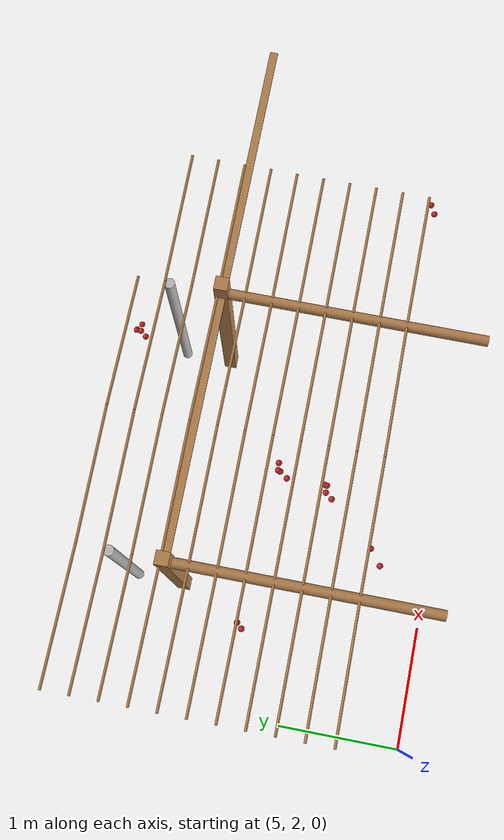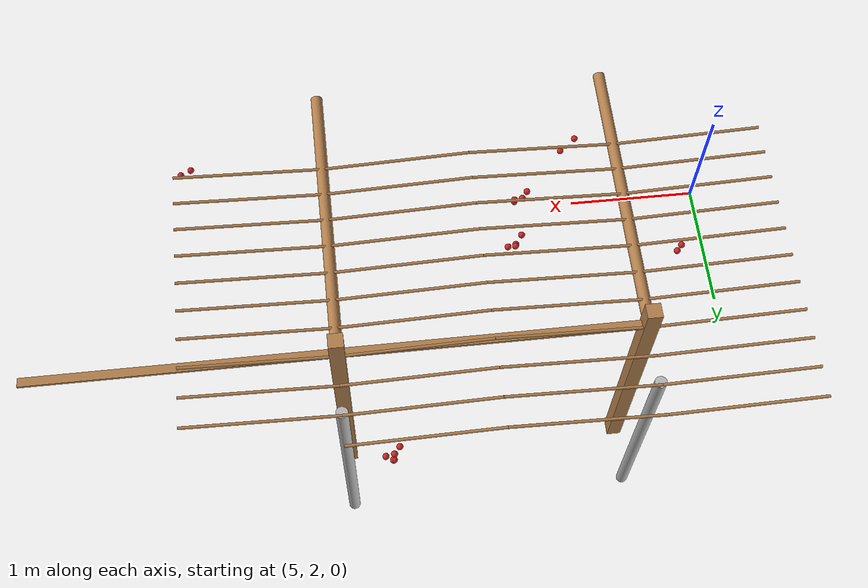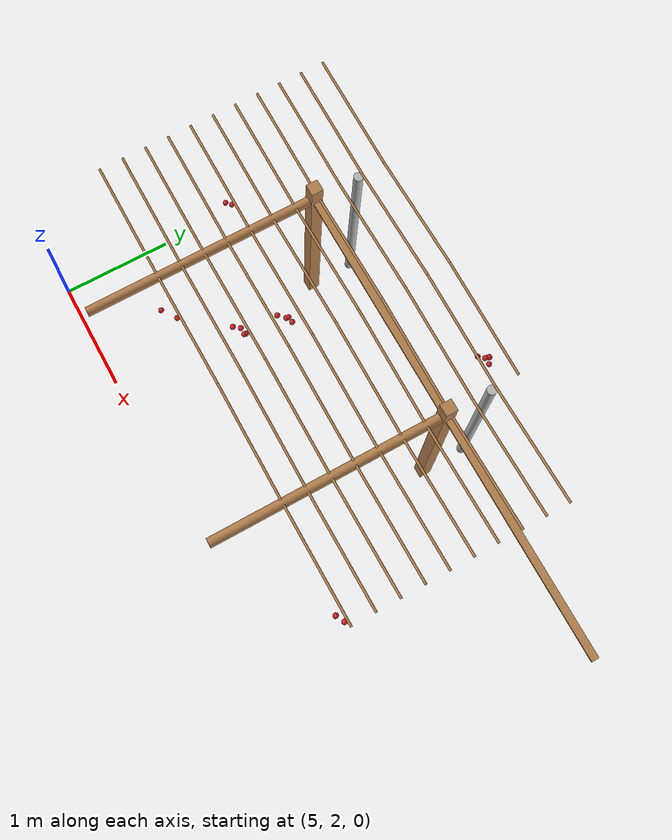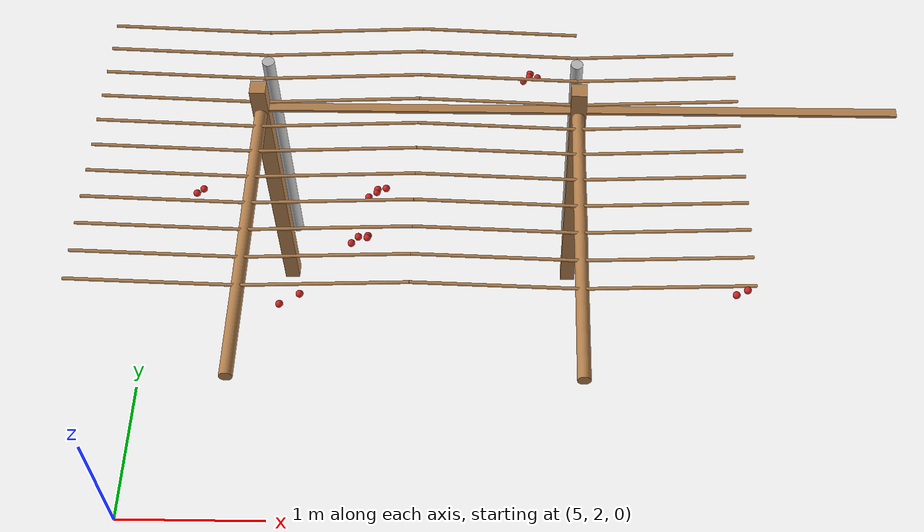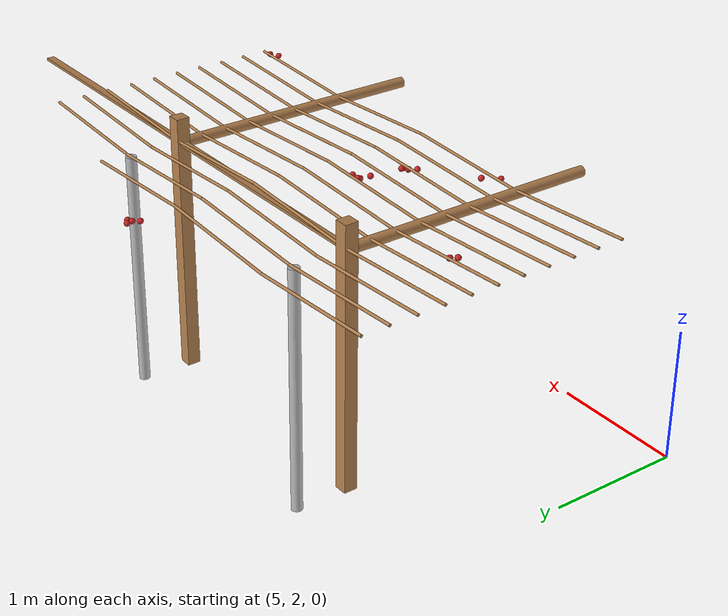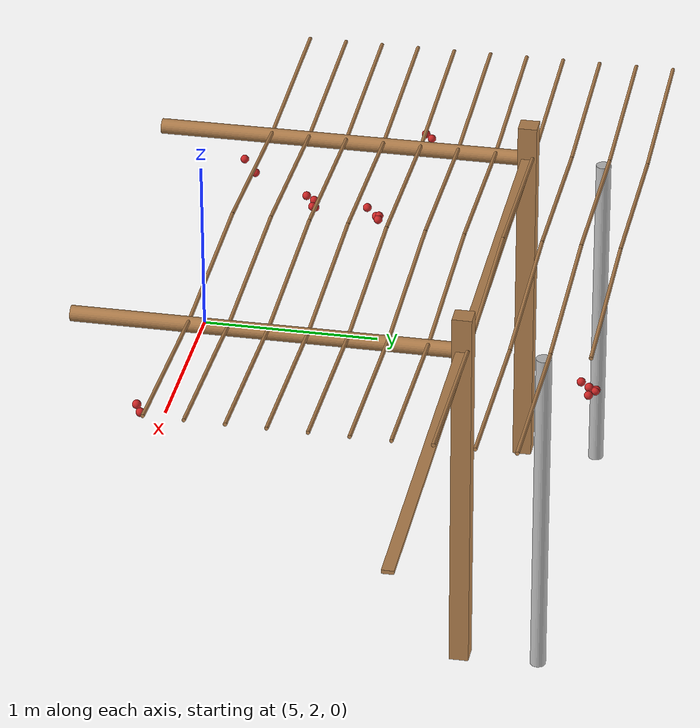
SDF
<sdf version="1.4">
 <model name="pergola">
  <include><name>post_35</name><pose>6.0 4.0 0 0 0 0</pose><uri>model://post</uri></include>
  <include><name>post_46</name><pose>8.0 4.0 0 0 0 0</pose><uri>model://post</uri></include>
  <link name="beam_35">
   <pose>7.0 4.0 1.81 0 0 0</pose>
   <collision name="collision"><geometry><box><size>2.0 0.06 0.02</size></box></geometry></collision>
   <visual name="visual">
    <geometry><box><size>2.0 0.06 0.02</size></box></geometry>
    <material><script><name>Gazebo/Wood</name></script></material>
   </visual>
   <inertial>
    <mass>5</mass>
    <inertia>
     <ixx>0.0016666666666666668</ixx>
     <ixy>0.0</ixy>
     <ixz>0.0</ixz>
     <iyy>1.6681666666666664</iyy>
     <iyz>0.0</iyz>
     <izz>1.6668333333333332</izz>
    </inertia>
   </inertial>
  </link>
  <link name="beam_46">
   <pose>9.0 4.0 1.81 0 0 0</pose>
   <collision name="collision"><geometry><box><size>2.0 0.06 0.02</size></box></geometry></collision>
   <visual name="visual">
    <geometry><box><size>2.0 0.06 0.02</size></box></geometry>
    <material><script><name>Gazebo/Wood</name></script></material>
   </visual>
   <inertial>
    <mass>5</mass>
    <inertia>
     <ixx>0.0016666666666666668</ixx>
     <ixy>0.0</ixy>
     <ixz>0.0</ixz>
     <iyy>1.6681666666666664</iyy>
     <iyz>0.0</iyz>
     <izz>1.6668333333333332</izz>
    </inertia>
   </inertial>
  </link>
  <include><name>tree_32</name><pose>6.0 4.4 0 0 0 0</pose><uri>model://tree_trunk</uri></include>
  <include><name>tree_42</name><pose>8.0 4.4 0 0 0 0</pose><uri>model://tree_trunk</uri></include>
  <link name="baseBranch_31">
   <pose>6.0 3.0 1.8 1.5707963267948966 0 0</pose>
   <collision name="collision">
    <geometry><cylinder><radius>0.04</radius><length>1.94</length></cylinder></geometry>
   </collision>
   <visual name="visual">
    <geometry><cylinder><radius>0.04</radius><length>1.94</length></cylinder></geometry>
    <material><script><name>Gazebo/WoodFloor</name></script></material>
   </visual>
   <inertial>
    <mass>10</mass>
    <inertia>
     <ixx>3.140333333333333</ixx>
     <ixy>0.0</ixy>
     <ixz>0.0</ixz>
     <iyy>3.140333333333333</iyy>
     <iyz>0.0</iyz>
     <izz>0.008</izz>
    </inertia>
   </inertial>
  </link>
  <link name="baseBranch_41">
   <pose>8.0 3.0 1.8 1.5707963267948966 0 0</pose>
   <collision name="collision">
    <geometry><cylinder><radius>0.04</radius><length>1.94</length></cylinder></geometry>
   </collision>
   <visual name="visual">
    <geometry><cylinder><radius>0.04</radius><length>1.94</length></cylinder></geometry>
    <material><script><name>Gazebo/WoodFloor</name></script></material>
   </visual>
   <inertial>
    <mass>10</mass>
    <inertia>
     <ixx>3.140333333333333</ixx>
     <ixy>0.0</ixy>
     <ixz>0.0</ixz>
     <iyy>3.140333333333333</iyy>
     <iyz>0.0</iyz>
     <izz>0.008</izz>
    </inertia>
   </inertial>
  </link>
  <link name="vine_427">
   <pose>5.5 2.63 1.85 0 -1.5208379310729538 0</pose>
   <collision name="collision">
    <geometry><cylinder><radius>0.01</radius><length>1.0012492197250393</length></cylinder></geometry>
   </collision>
   <visual name="visual">
    <geometry><cylinder><radius>0.01</radius><length>1.0012492197250393</length></cylinder></geometry>
    <material><script><name>Gazebo/WoodFloor</name></script></material>
   </visual>
   <inertial>
    <mass>5</mass>
    <inertia>
     <ixx>0.41783333333333345</ixx>
     <ixy>0.0</ixy>
     <ixz>0.0</ixz>
     <iyy>0.41783333333333345</iyy>
     <iyz>0.0</iyz>
     <izz>0.00025</izz>
    </inertia>
   </inertial>
  </link>
  <link name="vine_429">
   <pose>5.5 2.83 1.85 0 -1.5208379310729538 0</pose>
   <collision name="collision">
    <geometry><cylinder><radius>0.01</radius><length>1.0012492197250393</length></cylinder></geometry>
   </collision>
   <visual name="visual">
    <geometry><cylinder><radius>0.01</radius><length>1.0012492197250393</length></cylinder></geometry>
    <material><script><name>Gazebo/WoodFloor</name></script></material>
   </visual>
   <inertial>
    <mass>5</mass>
    <inertia>
     <ixx>0.41783333333333345</ixx>
     <ixy>0.0</ixy>
     <ixz>0.0</ixz>
     <iyy>0.41783333333333345</iyy>
     <iyz>0.0</iyz>
     <izz>0.00025</izz>
    </inertia>
   </inertial>
  </link>
  <link name="vine_431">
   <pose>5.5 3.03 1.85 0 -1.5208379310729538 0</pose>
   <collision name="collision">
    <geometry><cylinder><radius>0.01</radius><length>1.0012492197250393</length></cylinder></geometry>
   </collision>
   <visual name="visual">
    <geometry><cylinder><radius>0.01</radius><length>1.0012492197250393</length></cylinder></geometry>
    <material><script><name>Gazebo/WoodFloor</name></script></material>
   </visual>
   <inertial>
    <mass>5</mass>
    <inertia>
     <ixx>0.41783333333333345</ixx>
     <ixy>0.0</ixy>
     <ixz>0.0</ixz>
     <iyy>0.41783333333333345</iyy>
     <iyz>0.0</iyz>
     <izz>0.00025</izz>
    </inertia>
   </inertial>
  </link>
  <link name="vine_433">
   <pose>5.5 3.23 1.85 0 -1.5208379310729538 0</pose>
   <collision name="collision">
    <geometry><cylinder><radius>0.01</radius><length>1.0012492197250393</length></cylinder></geometry>
   </collision>
   <visual name="visual">
    <geometry><cylinder><radius>0.01</radius><length>1.0012492197250393</length></cylinder></geometry>
    <material><script><name>Gazebo/WoodFloor</name></script></material>
   </visual>
   <inertial>
    <mass>5</mass>
    <inertia>
     <ixx>0.41783333333333345</ixx>
     <ixy>0.0</ixy>
     <ixz>0.0</ixz>
     <iyy>0.41783333333333345</iyy>
     <iyz>0.0</iyz>
     <izz>0.00025</izz>
    </inertia>
   </inertial>
  </link>
  <link name="vine_435">
   <pose>5.5 3.43 1.85 0 -1.5208379310729538 0</pose>
   <collision name="collision">
    <geometry><cylinder><radius>0.01</radius><length>1.0012492197250393</length></cylinder></geometry>
   </collision>
   <visual name="visual">
    <geometry><cylinder><radius>0.01</radius><length>1.0012492197250393</length></cylinder></geometry>
    <material><script><name>Gazebo/WoodFloor</name></script></material>
   </visual>
   <inertial>
    <mass>5</mass>
    <inertia>
     <ixx>0.41783333333333345</ixx>
     <ixy>0.0</ixy>
     <ixz>0.0</ixz>
     <iyy>0.41783333333333345</iyy>
     <iyz>0.0</iyz>
     <izz>0.00025</izz>
    </inertia>
   </inertial>
  </link>
  <link name="vine_437">
   <pose>5.5 3.63 1.85 0 -1.5208379310729538 0</pose>
   <collision name="collision">
    <geometry><cylinder><radius>0.01</radius><length>1.0012492197250393</length></cylinder></geometry>
   </collision>
   <visual name="visual">
    <geometry><cylinder><radius>0.01</radius><length>1.0012492197250393</length></cylinder></geometry>
    <material><script><name>Gazebo/WoodFloor</name></script></material>
   </visual>
   <inertial>
    <mass>5</mass>
    <inertia>
     <ixx>0.41783333333333345</ixx>
     <ixy>0.0</ixy>
     <ixz>0.0</ixz>
     <iyy>0.41783333333333345</iyy>
     <iyz>0.0</iyz>
     <izz>0.00025</izz>
    </inertia>
   </inertial>
  </link>
  <link name="vine_439">
   <pose>5.5 3.83 1.85 0 -1.5208379310729538 0</pose>
   <collision name="collision">
    <geometry><cylinder><radius>0.01</radius><length>1.0012492197250393</length></cylinder></geometry>
   </collision>
   <visual name="visual">
    <geometry><cylinder><radius>0.01</radius><length>1.0012492197250393</length></cylinder></geometry>
    <material><script><name>Gazebo/WoodFloor</name></script></material>
   </visual>
   <inertial>
    <mass>5</mass>
    <inertia>
     <ixx>0.41783333333333345</ixx>
     <ixy>0.0</ixy>
     <ixz>0.0</ixz>
     <iyy>0.41783333333333345</iyy>
     <iyz>0.0</iyz>
     <izz>0.00025</izz>
    </inertia>
   </inertial>
  </link>
  <link name="vine_441">
   <pose>5.5 4.03 1.85 0 -1.5208379310729538 0</pose>
   <collision name="collision">
    <geometry><cylinder><radius>0.01</radius><length>1.0012492197250393</length></cylinder></geometry>
   </collision>
   <visual name="visual">
    <geometry><cylinder><radius>0.01</radius><length>1.0012492197250393</length></cylinder></geometry>
    <material><script><name>Gazebo/WoodFloor</name></script></material>
   </visual>
   <inertial>
    <mass>5</mass>
    <inertia>
     <ixx>0.41783333333333345</ixx>
     <ixy>0.0</ixy>
     <ixz>0.0</ixz>
     <iyy>0.41783333333333345</iyy>
     <iyz>0.0</iyz>
     <izz>0.00025</izz>
    </inertia>
   </inertial>
  </link>
  <link name="vine_443">
   <pose>5.5 4.23 1.85 0 -1.5208379310729538 0</pose>
   <collision name="collision">
    <geometry><cylinder><radius>0.01</radius><length>1.0012492197250393</length></cylinder></geometry>
   </collision>
   <visual name="visual">
    <geometry><cylinder><radius>0.01</radius><length>1.0012492197250393</length></cylinder></geometry>
    <material><script><name>Gazebo/WoodFloor</name></script></material>
   </visual>
   <inertial>
    <mass>5</mass>
    <inertia>
     <ixx>0.41783333333333345</ixx>
     <ixy>0.0</ixy>
     <ixz>0.0</ixz>
     <iyy>0.41783333333333345</iyy>
     <iyz>0.0</iyz>
     <izz>0.00025</izz>
    </inertia>
   </inertial>
  </link>
  <link name="vine_445">
   <pose>5.5 4.430000000000001 1.85 0 -1.5208379310729538 0</pose>
   <collision name="collision">
    <geometry><cylinder><radius>0.01</radius><length>1.0012492197250393</length></cylinder></geometry>
   </collision>
   <visual name="visual">
    <geometry><cylinder><radius>0.01</radius><length>1.0012492197250393</length></cylinder></geometry>
    <material><script><name>Gazebo/WoodFloor</name></script></material>
   </visual>
   <inertial>
    <mass>5</mass>
    <inertia>
     <ixx>0.41783333333333345</ixx>
     <ixy>0.0</ixy>
     <ixz>0.0</ixz>
     <iyy>0.41783333333333345</iyy>
     <iyz>0.0</iyz>
     <izz>0.00025</izz>
    </inertia>
   </inertial>
  </link>
  <link name="vine_447">
   <pose>5.5 4.630000000000001 1.85 0 -1.5208379310729538 0</pose>
   <collision name="collision">
    <geometry><cylinder><radius>0.01</radius><length>1.0012492197250393</length></cylinder></geometry>
   </collision>
   <visual name="visual">
    <geometry><cylinder><radius>0.01</radius><length>1.0012492197250393</length></cylinder></geometry>
    <material><script><name>Gazebo/WoodFloor</name></script></material>
   </visual>
   <inertial>
    <mass>5</mass>
    <inertia>
     <ixx>0.41783333333333345</ixx>
     <ixy>0.0</ixy>
     <ixz>0.0</ixz>
     <iyy>0.41783333333333345</iyy>
     <iyz>0.0</iyz>
     <izz>0.00025</izz>
    </inertia>
   </inertial>
  </link>
  <link name="vine_626">
   <pose>6.5 2.63 1.85 0 1.5208379310729538 0</pose>
   <collision name="collision">
    <geometry><cylinder><radius>0.01</radius><length>1.0012492197250393</length></cylinder></geometry>
   </collision>
   <visual name="visual">
    <geometry><cylinder><radius>0.01</radius><length>1.0012492197250393</length></cylinder></geometry>
    <material><script><name>Gazebo/WoodFloor</name></script></material>
   </visual>
   <inertial>
    <mass>5</mass>
    <inertia>
     <ixx>0.41783333333333345</ixx>
     <ixy>0.0</ixy>
     <ixz>0.0</ixz>
     <iyy>0.41783333333333345</iyy>
     <iyz>0.0</iyz>
     <izz>0.00025</izz>
    </inertia>
   </inertial>
  </link>
  <link name="vine_627">
   <pose>7.5 2.63 1.85 0 -1.5208379310729538 0</pose>
   <collision name="collision">
    <geometry><cylinder><radius>0.01</radius><length>1.0012492197250393</length></cylinder></geometry>
   </collision>
   <visual name="visual">
    <geometry><cylinder><radius>0.01</radius><length>1.0012492197250393</length></cylinder></geometry>
    <material><script><name>Gazebo/WoodFloor</name></script></material>
   </visual>
   <inertial>
    <mass>5</mass>
    <inertia>
     <ixx>0.41783333333333345</ixx>
     <ixy>0.0</ixy>
     <ixz>0.0</ixz>
     <iyy>0.41783333333333345</iyy>
     <iyz>0.0</iyz>
     <izz>0.00025</izz>
    </inertia>
   </inertial>
  </link>
  <link name="vine_628">
   <pose>6.5 2.83 1.85 0 1.5208379310729538 0</pose>
   <collision name="collision">
    <geometry><cylinder><radius>0.01</radius><length>1.0012492197250393</length></cylinder></geometry>
   </collision>
   <visual name="visual">
    <geometry><cylinder><radius>0.01</radius><length>1.0012492197250393</length></cylinder></geometry>
    <material><script><name>Gazebo/WoodFloor</name></script></material>
   </visual>
   <inertial>
    <mass>5</mass>
    <inertia>
     <ixx>0.41783333333333345</ixx>
     <ixy>0.0</ixy>
     <ixz>0.0</ixz>
     <iyy>0.41783333333333345</iyy>
     <iyz>0.0</iyz>
     <izz>0.00025</izz>
    </inertia>
   </inertial>
  </link>
  <link name="vine_629">
   <pose>7.5 2.83 1.85 0 -1.5208379310729538 0</pose>
   <collision name="collision">
    <geometry><cylinder><radius>0.01</radius><length>1.0012492197250393</length></cylinder></geometry>
   </collision>
   <visual name="visual">
    <geometry><cylinder><radius>0.01</radius><length>1.0012492197250393</length></cylinder></geometry>
    <material><script><name>Gazebo/WoodFloor</name></script></material>
   </visual>
   <inertial>
    <mass>5</mass>
    <inertia>
     <ixx>0.41783333333333345</ixx>
     <ixy>0.0</ixy>
     <ixz>0.0</ixz>
     <iyy>0.41783333333333345</iyy>
     <iyz>0.0</iyz>
     <izz>0.00025</izz>
    </inertia>
   </inertial>
  </link>
  <link name="vine_630">
   <pose>6.5 3.03 1.85 0 1.5208379310729538 0</pose>
   <collision name="collision">
    <geometry><cylinder><radius>0.01</radius><length>1.0012492197250393</length></cylinder></geometry>
   </collision>
   <visual name="visual">
    <geometry><cylinder><radius>0.01</radius><length>1.0012492197250393</length></cylinder></geometry>
    <material><script><name>Gazebo/WoodFloor</name></script></material>
   </visual>
   <inertial>
    <mass>5</mass>
    <inertia>
     <ixx>0.41783333333333345</ixx>
     <ixy>0.0</ixy>
     <ixz>0.0</ixz>
     <iyy>0.41783333333333345</iyy>
     <iyz>0.0</iyz>
     <izz>0.00025</izz>
    </inertia>
   </inertial>
  </link>
  <link name="vine_631">
   <pose>7.5 3.03 1.85 0 -1.5208379310729538 0</pose>
   <collision name="collision">
    <geometry><cylinder><radius>0.01</radius><length>1.0012492197250393</length></cylinder></geometry>
   </collision>
   <visual name="visual">
    <geometry><cylinder><radius>0.01</radius><length>1.0012492197250393</length></cylinder></geometry>
    <material><script><name>Gazebo/WoodFloor</name></script></material>
   </visual>
   <inertial>
    <mass>5</mass>
    <inertia>
     <ixx>0.41783333333333345</ixx>
     <ixy>0.0</ixy>
     <ixz>0.0</ixz>
     <iyy>0.41783333333333345</iyy>
     <iyz>0.0</iyz>
     <izz>0.00025</izz>
    </inertia>
   </inertial>
  </link>
  <link name="vine_632">
   <pose>6.5 3.23 1.85 0 1.5208379310729538 0</pose>
   <collision name="collision">
    <geometry><cylinder><radius>0.01</radius><length>1.0012492197250393</length></cylinder></geometry>
   </collision>
   <visual name="visual">
    <geometry><cylinder><radius>0.01</radius><length>1.0012492197250393</length></cylinder></geometry>
    <material><script><name>Gazebo/WoodFloor</name></script></material>
   </visual>
   <inertial>
    <mass>5</mass>
    <inertia>
     <ixx>0.41783333333333345</ixx>
     <ixy>0.0</ixy>
     <ixz>0.0</ixz>
     <iyy>0.41783333333333345</iyy>
     <iyz>0.0</iyz>
     <izz>0.00025</izz>
    </inertia>
   </inertial>
  </link>
  <link name="vine_633">
   <pose>7.5 3.23 1.85 0 -1.5208379310729538 0</pose>
   <collision name="collision">
    <geometry><cylinder><radius>0.01</radius><length>1.0012492197250393</length></cylinder></geometry>
   </collision>
   <visual name="visual">
    <geometry><cylinder><radius>0.01</radius><length>1.0012492197250393</length></cylinder></geometry>
    <material><script><name>Gazebo/WoodFloor</name></script></material>
   </visual>
   <inertial>
    <mass>5</mass>
    <inertia>
     <ixx>0.41783333333333345</ixx>
     <ixy>0.0</ixy>
     <ixz>0.0</ixz>
     <iyy>0.41783333333333345</iyy>
     <iyz>0.0</iyz>
     <izz>0.00025</izz>
    </inertia>
   </inertial>
  </link>
  <link name="vine_634">
   <pose>6.5 3.43 1.85 0 1.5208379310729538 0</pose>
   <collision name="collision">
    <geometry><cylinder><radius>0.01</radius><length>1.0012492197250393</length></cylinder></geometry>
   </collision>
   <visual name="visual">
    <geometry><cylinder><radius>0.01</radius><length>1.0012492197250393</length></cylinder></geometry>
    <material><script><name>Gazebo/WoodFloor</name></script></material>
   </visual>
   <inertial>
    <mass>5</mass>
    <inertia>
     <ixx>0.41783333333333345</ixx>
     <ixy>0.0</ixy>
     <ixz>0.0</ixz>
     <iyy>0.41783333333333345</iyy>
     <iyz>0.0</iyz>
     <izz>0.00025</izz>
    </inertia>
   </inertial>
  </link>
  <link name="vine_635">
   <pose>7.5 3.43 1.85 0 -1.5208379310729538 0</pose>
   <collision name="collision">
    <geometry><cylinder><radius>0.01</radius><length>1.0012492197250393</length></cylinder></geometry>
   </collision>
   <visual name="visual">
    <geometry><cylinder><radius>0.01</radius><length>1.0012492197250393</length></cylinder></geometry>
    <material><script><name>Gazebo/WoodFloor</name></script></material>
   </visual>
   <inertial>
    <mass>5</mass>
    <inertia>
     <ixx>0.41783333333333345</ixx>
     <ixy>0.0</ixy>
     <ixz>0.0</ixz>
     <iyy>0.41783333333333345</iyy>
     <iyz>0.0</iyz>
     <izz>0.00025</izz>
    </inertia>
   </inertial>
  </link>
  <link name="vine_636">
   <pose>6.5 3.63 1.85 0 1.5208379310729538 0</pose>
   <collision name="collision">
    <geometry><cylinder><radius>0.01</radius><length>1.0012492197250393</length></cylinder></geometry>
   </collision>
   <visual name="visual">
    <geometry><cylinder><radius>0.01</radius><length>1.0012492197250393</length></cylinder></geometry>
    <material><script><name>Gazebo/WoodFloor</name></script></material>
   </visual>
   <inertial>
    <mass>5</mass>
    <inertia>
     <ixx>0.41783333333333345</ixx>
     <ixy>0.0</ixy>
     <ixz>0.0</ixz>
     <iyy>0.41783333333333345</iyy>
     <iyz>0.0</iyz>
     <izz>0.00025</izz>
    </inertia>
   </inertial>
  </link>
  <link name="vine_637">
   <pose>7.5 3.63 1.85 0 -1.5208379310729538 0</pose>
   <collision name="collision">
    <geometry><cylinder><radius>0.01</radius><length>1.0012492197250393</length></cylinder></geometry>
   </collision>
   <visual name="visual">
    <geometry><cylinder><radius>0.01</radius><length>1.0012492197250393</length></cylinder></geometry>
    <material><script><name>Gazebo/WoodFloor</name></script></material>
   </visual>
   <inertial>
    <mass>5</mass>
    <inertia>
     <ixx>0.41783333333333345</ixx>
     <ixy>0.0</ixy>
     <ixz>0.0</ixz>
     <iyy>0.41783333333333345</iyy>
     <iyz>0.0</iyz>
     <izz>0.00025</izz>
    </inertia>
   </inertial>
  </link>
  <link name="vine_638">
   <pose>6.5 3.83 1.85 0 1.5208379310729538 0</pose>
   <collision name="collision">
    <geometry><cylinder><radius>0.01</radius><length>1.0012492197250393</length></cylinder></geometry>
   </collision>
   <visual name="visual">
    <geometry><cylinder><radius>0.01</radius><length>1.0012492197250393</length></cylinder></geometry>
    <material><script><name>Gazebo/WoodFloor</name></script></material>
   </visual>
   <inertial>
    <mass>5</mass>
    <inertia>
     <ixx>0.41783333333333345</ixx>
     <ixy>0.0</ixy>
     <ixz>0.0</ixz>
     <iyy>0.41783333333333345</iyy>
     <iyz>0.0</iyz>
     <izz>0.00025</izz>
    </inertia>
   </inertial>
  </link>
  <link name="vine_639">
   <pose>7.5 3.83 1.85 0 -1.5208379310729538 0</pose>
   <collision name="collision">
    <geometry><cylinder><radius>0.01</radius><length>1.0012492197250393</length></cylinder></geometry>
   </collision>
   <visual name="visual">
    <geometry><cylinder><radius>0.01</radius><length>1.0012492197250393</length></cylinder></geometry>
    <material><script><name>Gazebo/WoodFloor</name></script></material>
   </visual>
   <inertial>
    <mass>5</mass>
    <inertia>
     <ixx>0.41783333333333345</ixx>
     <ixy>0.0</ixy>
     <ixz>0.0</ixz>
     <iyy>0.41783333333333345</iyy>
     <iyz>0.0</iyz>
     <izz>0.00025</izz>
    </inertia>
   </inertial>
  </link>
  <link name="vine_640">
   <pose>6.5 4.03 1.85 0 1.5208379310729538 0</pose>
   <collision name="collision">
    <geometry><cylinder><radius>0.01</radius><length>1.0012492197250393</length></cylinder></geometry>
   </collision>
   <visual name="visual">
    <geometry><cylinder><radius>0.01</radius><length>1.0012492197250393</length></cylinder></geometry>
    <material><script><name>Gazebo/WoodFloor</name></script></material>
   </visual>
   <inertial>
    <mass>5</mass>
    <inertia>
     <ixx>0.41783333333333345</ixx>
     <ixy>0.0</ixy>
     <ixz>0.0</ixz>
     <iyy>0.41783333333333345</iyy>
     <iyz>0.0</iyz>
     <izz>0.00025</izz>
    </inertia>
   </inertial>
  </link>
  <link name="vine_641">
   <pose>7.5 4.03 1.85 0 -1.5208379310729538 0</pose>
   <collision name="collision">
    <geometry><cylinder><radius>0.01</radius><length>1.0012492197250393</length></cylinder></geometry>
   </collision>
   <visual name="visual">
    <geometry><cylinder><radius>0.01</radius><length>1.0012492197250393</length></cylinder></geometry>
    <material><script><name>Gazebo/WoodFloor</name></script></material>
   </visual>
   <inertial>
    <mass>5</mass>
    <inertia>
     <ixx>0.41783333333333345</ixx>
     <ixy>0.0</ixy>
     <ixz>0.0</ixz>
     <iyy>0.41783333333333345</iyy>
     <iyz>0.0</iyz>
     <izz>0.00025</izz>
    </inertia>
   </inertial>
  </link>
  <link name="vine_642">
   <pose>6.5 4.23 1.85 0 1.5208379310729538 0</pose>
   <collision name="collision">
    <geometry><cylinder><radius>0.01</radius><length>1.0012492197250393</length></cylinder></geometry>
   </collision>
   <visual name="visual">
    <geometry><cylinder><radius>0.01</radius><length>1.0012492197250393</length></cylinder></geometry>
    <material><script><name>Gazebo/WoodFloor</name></script></material>
   </visual>
   <inertial>
    <mass>5</mass>
    <inertia>
     <ixx>0.41783333333333345</ixx>
     <ixy>0.0</ixy>
     <ixz>0.0</ixz>
     <iyy>0.41783333333333345</iyy>
     <iyz>0.0</iyz>
     <izz>0.00025</izz>
    </inertia>
   </inertial>
  </link>
  <link name="vine_643">
   <pose>7.5 4.23 1.85 0 -1.5208379310729538 0</pose>
   <collision name="collision">
    <geometry><cylinder><radius>0.01</radius><length>1.0012492197250393</length></cylinder></geometry>
   </collision>
   <visual name="visual">
    <geometry><cylinder><radius>0.01</radius><length>1.0012492197250393</length></cylinder></geometry>
    <material><script><name>Gazebo/WoodFloor</name></script></material>
   </visual>
   <inertial>
    <mass>5</mass>
    <inertia>
     <ixx>0.41783333333333345</ixx>
     <ixy>0.0</ixy>
     <ixz>0.0</ixz>
     <iyy>0.41783333333333345</iyy>
     <iyz>0.0</iyz>
     <izz>0.00025</izz>
    </inertia>
   </inertial>
  </link>
  <link name="vine_644">
   <pose>6.5 4.430000000000001 1.85 0 1.5208379310729538 0</pose>
   <collision name="collision">
    <geometry><cylinder><radius>0.01</radius><length>1.0012492197250393</length></cylinder></geometry>
   </collision>
   <visual name="visual">
    <geometry><cylinder><radius>0.01</radius><length>1.0012492197250393</length></cylinder></geometry>
    <material><script><name>Gazebo/WoodFloor</name></script></material>
   </visual>
   <inertial>
    <mass>5</mass>
    <inertia>
     <ixx>0.41783333333333345</ixx>
     <ixy>0.0</ixy>
     <ixz>0.0</ixz>
     <iyy>0.41783333333333345</iyy>
     <iyz>0.0</iyz>
     <izz>0.00025</izz>
    </inertia>
   </inertial>
  </link>
  <link name="vine_645">
   <pose>7.5 4.430000000000001 1.85 0 -1.5208379310729538 0</pose>
   <collision name="collision">
    <geometry><cylinder><radius>0.01</radius><length>1.0012492197250393</length></cylinder></geometry>
   </collision>
   <visual name="visual">
    <geometry><cylinder><radius>0.01</radius><length>1.0012492197250393</length></cylinder></geometry>
    <material><script><name>Gazebo/WoodFloor</name></script></material>
   </visual>
   <inertial>
    <mass>5</mass>
    <inertia>
     <ixx>0.41783333333333345</ixx>
     <ixy>0.0</ixy>
     <ixz>0.0</ixz>
     <iyy>0.41783333333333345</iyy>
     <iyz>0.0</iyz>
     <izz>0.00025</izz>
    </inertia>
   </inertial>
  </link>
  <link name="vine_646">
   <pose>6.5 4.630000000000001 1.85 0 1.5208379310729538 0</pose>
   <collision name="collision">
    <geometry><cylinder><radius>0.01</radius><length>1.0012492197250393</length></cylinder></geometry>
   </collision>
   <visual name="visual">
    <geometry><cylinder><radius>0.01</radius><length>1.0012492197250393</length></cylinder></geometry>
    <material><script><name>Gazebo/WoodFloor</name></script></material>
   </visual>
   <inertial>
    <mass>5</mass>
    <inertia>
     <ixx>0.41783333333333345</ixx>
     <ixy>0.0</ixy>
     <ixz>0.0</ixz>
     <iyy>0.41783333333333345</iyy>
     <iyz>0.0</iyz>
     <izz>0.00025</izz>
    </inertia>
   </inertial>
  </link>
  <link name="vine_647">
   <pose>7.5 4.630000000000001 1.85 0 -1.5208379310729538 0</pose>
   <collision name="collision">
    <geometry><cylinder><radius>0.01</radius><length>1.0012492197250393</length></cylinder></geometry>
   </collision>
   <visual name="visual">
    <geometry><cylinder><radius>0.01</radius><length>1.0012492197250393</length></cylinder></geometry>
    <material><script><name>Gazebo/WoodFloor</name></script></material>
   </visual>
   <inertial>
    <mass>5</mass>
    <inertia>
     <ixx>0.41783333333333345</ixx>
     <ixy>0.0</ixy>
     <ixz>0.0</ixz>
     <iyy>0.41783333333333345</iyy>
     <iyz>0.0</iyz>
     <izz>0.00025</izz>
    </inertia>
   </inertial>
  </link>
  <link name="vine_826">
   <pose>8.5 2.63 1.85 0 1.5208379310729538 0</pose>
   <collision name="collision">
    <geometry><cylinder><radius>0.01</radius><length>1.0012492197250393</length></cylinder></geometry>
   </collision>
   <visual name="visual">
    <geometry><cylinder><radius>0.01</radius><length>1.0012492197250393</length></cylinder></geometry>
    <material><script><name>Gazebo/WoodFloor</name></script></material>
   </visual>
   <inertial>
    <mass>5</mass>
    <inertia>
     <ixx>0.41783333333333345</ixx>
     <ixy>0.0</ixy>
     <ixz>0.0</ixz>
     <iyy>0.41783333333333345</iyy>
     <iyz>0.0</iyz>
     <izz>0.00025</izz>
    </inertia>
   </inertial>
  </link>
  <link name="vine_828">
   <pose>8.5 2.83 1.85 0 1.5208379310729538 0</pose>
   <collision name="collision">
    <geometry><cylinder><radius>0.01</radius><length>1.0012492197250393</length></cylinder></geometry>
   </collision>
   <visual name="visual">
    <geometry><cylinder><radius>0.01</radius><length>1.0012492197250393</length></cylinder></geometry>
    <material><script><name>Gazebo/WoodFloor</name></script></material>
   </visual>
   <inertial>
    <mass>5</mass>
    <inertia>
     <ixx>0.41783333333333345</ixx>
     <ixy>0.0</ixy>
     <ixz>0.0</ixz>
     <iyy>0.41783333333333345</iyy>
     <iyz>0.0</iyz>
     <izz>0.00025</izz>
    </inertia>
   </inertial>
  </link>
  <link name="vine_830">
   <pose>8.5 3.03 1.85 0 1.5208379310729538 0</pose>
   <collision name="collision">
    <geometry><cylinder><radius>0.01</radius><length>1.0012492197250393</length></cylinder></geometry>
   </collision>
   <visual name="visual">
    <geometry><cylinder><radius>0.01</radius><length>1.0012492197250393</length></cylinder></geometry>
    <material><script><name>Gazebo/WoodFloor</name></script></material>
   </visual>
   <inertial>
    <mass>5</mass>
    <inertia>
     <ixx>0.41783333333333345</ixx>
     <ixy>0.0</ixy>
     <ixz>0.0</ixz>
     <iyy>0.41783333333333345</iyy>
     <iyz>0.0</iyz>
     <izz>0.00025</izz>
    </inertia>
   </inertial>
  </link>
  <link name="vine_832">
   <pose>8.5 3.23 1.85 0 1.5208379310729538 0</pose>
   <collision name="collision">
    <geometry><cylinder><radius>0.01</radius><length>1.0012492197250393</length></cylinder></geometry>
   </collision>
   <visual name="visual">
    <geometry><cylinder><radius>0.01</radius><length>1.0012492197250393</length></cylinder></geometry>
    <material><script><name>Gazebo/WoodFloor</name></script></material>
   </visual>
   <inertial>
    <mass>5</mass>
    <inertia>
     <ixx>0.41783333333333345</ixx>
     <ixy>0.0</ixy>
     <ixz>0.0</ixz>
     <iyy>0.41783333333333345</iyy>
     <iyz>0.0</iyz>
     <izz>0.00025</izz>
    </inertia>
   </inertial>
  </link>
  <link name="vine_834">
   <pose>8.5 3.43 1.85 0 1.5208379310729538 0</pose>
   <collision name="collision">
    <geometry><cylinder><radius>0.01</radius><length>1.0012492197250393</length></cylinder></geometry>
   </collision>
   <visual name="visual">
    <geometry><cylinder><radius>0.01</radius><length>1.0012492197250393</length></cylinder></geometry>
    <material><script><name>Gazebo/WoodFloor</name></script></material>
   </visual>
   <inertial>
    <mass>5</mass>
    <inertia>
     <ixx>0.41783333333333345</ixx>
     <ixy>0.0</ixy>
     <ixz>0.0</ixz>
     <iyy>0.41783333333333345</iyy>
     <iyz>0.0</iyz>
     <izz>0.00025</izz>
    </inertia>
   </inertial>
  </link>
  <link name="vine_836">
   <pose>8.5 3.63 1.85 0 1.5208379310729538 0</pose>
   <collision name="collision">
    <geometry><cylinder><radius>0.01</radius><length>1.0012492197250393</length></cylinder></geometry>
   </collision>
   <visual name="visual">
    <geometry><cylinder><radius>0.01</radius><length>1.0012492197250393</length></cylinder></geometry>
    <material><script><name>Gazebo/WoodFloor</name></script></material>
   </visual>
   <inertial>
    <mass>5</mass>
    <inertia>
     <ixx>0.41783333333333345</ixx>
     <ixy>0.0</ixy>
     <ixz>0.0</ixz>
     <iyy>0.41783333333333345</iyy>
     <iyz>0.0</iyz>
     <izz>0.00025</izz>
    </inertia>
   </inertial>
  </link>
  <link name="vine_838">
   <pose>8.5 3.83 1.85 0 1.5208379310729538 0</pose>
   <collision name="collision">
    <geometry><cylinder><radius>0.01</radius><length>1.0012492197250393</length></cylinder></geometry>
   </collision>
   <visual name="visual">
    <geometry><cylinder><radius>0.01</radius><length>1.0012492197250393</length></cylinder></geometry>
    <material><script><name>Gazebo/WoodFloor</name></script></material>
   </visual>
   <inertial>
    <mass>5</mass>
    <inertia>
     <ixx>0.41783333333333345</ixx>
     <ixy>0.0</ixy>
     <ixz>0.0</ixz>
     <iyy>0.41783333333333345</iyy>
     <iyz>0.0</iyz>
     <izz>0.00025</izz>
    </inertia>
   </inertial>
  </link>
  <link name="vine_840">
   <pose>8.5 4.03 1.85 0 1.5208379310729538 0</pose>
   <collision name="collision">
    <geometry><cylinder><radius>0.01</radius><length>1.0012492197250393</length></cylinder></geometry>
   </collision>
   <visual name="visual">
    <geometry><cylinder><radius>0.01</radius><length>1.0012492197250393</length></cylinder></geometry>
    <material><script><name>Gazebo/WoodFloor</name></script></material>
   </visual>
   <inertial>
    <mass>5</mass>
    <inertia>
     <ixx>0.41783333333333345</ixx>
     <ixy>0.0</ixy>
     <ixz>0.0</ixz>
     <iyy>0.41783333333333345</iyy>
     <iyz>0.0</iyz>
     <izz>0.00025</izz>
    </inertia>
   </inertial>
  </link>
  <link name="vine_842">
   <pose>8.5 4.23 1.85 0 1.5208379310729538 0</pose>
   <collision name="collision">
    <geometry><cylinder><radius>0.01</radius><length>1.0012492197250393</length></cylinder></geometry>
   </collision>
   <visual name="visual">
    <geometry><cylinder><radius>0.01</radius><length>1.0012492197250393</length></cylinder></geometry>
    <material><script><name>Gazebo/WoodFloor</name></script></material>
   </visual>
   <inertial>
    <mass>5</mass>
    <inertia>
     <ixx>0.41783333333333345</ixx>
     <ixy>0.0</ixy>
     <ixz>0.0</ixz>
     <iyy>0.41783333333333345</iyy>
     <iyz>0.0</iyz>
     <izz>0.00025</izz>
    </inertia>
   </inertial>
  </link>
  <link name="vine_844">
   <pose>8.5 4.430000000000001 1.85 0 1.5208379310729538 0</pose>
   <collision name="collision">
    <geometry><cylinder><radius>0.01</radius><length>1.0012492197250393</length></cylinder></geometry>
   </collision>
   <visual name="visual">
    <geometry><cylinder><radius>0.01</radius><length>1.0012492197250393</length></cylinder></geometry>
    <material><script><name>Gazebo/WoodFloor</name></script></material>
   </visual>
   <inertial>
    <mass>5</mass>
    <inertia>
     <ixx>0.41783333333333345</ixx>
     <ixy>0.0</ixy>
     <ixz>0.0</ixz>
     <iyy>0.41783333333333345</iyy>
     <iyz>0.0</iyz>
     <izz>0.00025</izz>
    </inertia>
   </inertial>
  </link>
  <link name="fruit_82">
   <pose>6.2503511377599015 2.5317253765577683 1.7826391643243948 0 0 0</pose>
   <collision name="fruit_collision_82"><geometry><sphere><radius>0.022</radius></sphere></geometry></collision>
   <visual name="visual">
    <geometry><sphere><radius>0.022</radius></sphere></geometry>
    <material><script><name>Gazebo/Red</name></script></material>
   </visual>
   <inertial>
    <mass>0.05</mass>
    <inertia>
     <ixx>9.679999999999999e-06</ixx>
     <ixy>0.0</ixy>
     <ixz>0.0</ixz>
     <iyy>9.679999999999999e-06</iyy>
     <iyz>0.0</iyz>
     <izz>9.679999999999999e-06</izz>
    </inertia>
   </inertial>
   <sensor name="fruit_contact_82" type="contact">
    <contact><collision>fruit_collision_82</collision></contact>
   </sensor>
  </link>
  <link name="fruit_87">
   <pose>6.642107831248715 2.9433743528932332 1.8179282641007133 0 0 0</pose>
   <collision name="fruit_collision_87"><geometry><sphere><radius>0.022</radius></sphere></geometry></collision>
   <visual name="visual">
    <geometry><sphere><radius>0.022</radius></sphere></geometry>
    <material><script><name>Gazebo/Red</name></script></material>
   </visual>
   <inertial>
    <mass>0.05</mass>
    <inertia>
     <ixx>9.679999999999999e-06</ixx>
     <ixy>0.0</ixy>
     <ixz>0.0</ixz>
     <iyy>9.679999999999999e-06</iyy>
     <iyz>0.0</iyz>
     <izz>9.679999999999999e-06</izz>
    </inertia>
   </inertial>
   <sensor name="fruit_contact_87" type="contact">
    <contact><collision>fruit_collision_87</collision></contact>
   </sensor>
  </link>
  <link name="fruit_163">
   <pose>5.653739711301509 3.393145645197919 1.7028331777480128 0 0 0</pose>
   <collision name="fruit_collision_163"><geometry><sphere><radius>0.022</radius></sphere></geometry></collision>
   <visual name="visual">
    <geometry><sphere><radius>0.022</radius></sphere></geometry>
    <material><script><name>Gazebo/Red</name></script></material>
   </visual>
   <inertial>
    <mass>0.05</mass>
    <inertia>
     <ixx>9.679999999999999e-06</ixx>
     <ixy>0.0</ixy>
     <ixz>0.0</ixz>
     <iyy>9.679999999999999e-06</iyy>
     <iyz>0.0</iyz>
     <izz>9.679999999999999e-06</izz>
    </inertia>
   </inertial>
   <sensor name="fruit_contact_163" type="contact">
    <contact><collision>fruit_collision_163</collision></contact>
   </sensor>
  </link>
  <link name="fruit_268">
   <pose>6.725420149567964 3.278577709915094 1.8281302757902849 0 0 0</pose>
   <collision name="fruit_collision_268"><geometry><sphere><radius>0.022</radius></sphere></geometry></collision>
   <visual name="visual">
    <geometry><sphere><radius>0.022</radius></sphere></geometry>
    <material><script><name>Gazebo/Red</name></script></material>
   </visual>
   <inertial>
    <mass>0.05</mass>
    <inertia>
     <ixx>9.679999999999999e-06</ixx>
     <ixy>0.0</ixy>
     <ixz>0.0</ixz>
     <iyy>9.679999999999999e-06</iyy>
     <iyz>0.0</iyz>
     <izz>9.679999999999999e-06</izz>
    </inertia>
   </inertial>
   <sensor name="fruit_contact_268" type="contact">
    <contact><collision>fruit_collision_268</collision></contact>
   </sensor>
  </link>
  <link name="fruit_331">
   <pose>7.657765985228822 4.538637758575398 1.47839707800551 0 0 0</pose>
   <collision name="fruit_collision_331"><geometry><sphere><radius>0.022</radius></sphere></geometry></collision>
   <visual name="visual">
    <geometry><sphere><radius>0.022</radius></sphere></geometry>
    <material><script><name>Gazebo/Red</name></script></material>
   </visual>
   <inertial>
    <mass>0.05</mass>
    <inertia>
     <ixx>9.679999999999999e-06</ixx>
     <ixy>0.0</ixy>
     <ixz>0.0</ixz>
     <iyy>9.679999999999999e-06</iyy>
     <iyz>0.0</iyz>
     <izz>9.679999999999999e-06</izz>
    </inertia>
   </inertial>
   <sensor name="fruit_contact_331" type="contact">
    <contact><collision>fruit_collision_331</collision></contact>
   </sensor>
  </link>
  <link name="fruit_359">
   <pose>6.7320007051835065 2.9926422752511037 1.8080683253441017 0 0 0</pose>
   <collision name="fruit_collision_359"><geometry><sphere><radius>0.022</radius></sphere></geometry></collision>
   <visual name="visual">
    <geometry><sphere><radius>0.022</radius></sphere></geometry>
    <material><script><name>Gazebo/Red</name></script></material>
   </visual>
   <inertial>
    <mass>0.05</mass>
    <inertia>
     <ixx>9.679999999999999e-06</ixx>
     <ixy>0.0</ixy>
     <ixz>0.0</ixz>
     <iyy>9.679999999999999e-06</iyy>
     <iyz>0.0</iyz>
     <izz>9.679999999999999e-06</izz>
    </inertia>
   </inertial>
   <sensor name="fruit_contact_359" type="contact">
    <contact><collision>fruit_collision_359</collision></contact>
   </sensor>
  </link>
  <link name="fruit_399">
   <pose>6.824933442868254 3.3538331758192665 1.8197372384099904 0 0 0</pose>
   <collision name="fruit_collision_399"><geometry><sphere><radius>0.022</radius></sphere></geometry></collision>
   <visual name="visual">
    <geometry><sphere><radius>0.022</radius></sphere></geometry>
    <material><script><name>Gazebo/Red</name></script></material>
   </visual>
   <inertial>
    <mass>0.05</mass>
    <inertia>
     <ixx>9.679999999999999e-06</ixx>
     <ixy>0.0</ixy>
     <ixz>0.0</ixz>
     <iyy>9.679999999999999e-06</iyy>
     <iyz>0.0</iyz>
     <izz>9.679999999999999e-06</izz>
    </inertia>
   </inertial>
   <sensor name="fruit_contact_399" type="contact">
    <contact><collision>fruit_collision_399</collision></contact>
   </sensor>
  </link>
  <link name="fruit_442">
   <pose>6.774362591425052 3.349184014775345 1.813187962822713 0 0 0</pose>
   <collision name="fruit_collision_442"><geometry><sphere><radius>0.022</radius></sphere></geometry></collision>
   <visual name="visual">
    <geometry><sphere><radius>0.022</radius></sphere></geometry>
    <material><script><name>Gazebo/Red</name></script></material>
   </visual>
   <inertial>
    <mass>0.05</mass>
    <inertia>
     <ixx>9.679999999999999e-06</ixx>
     <ixy>0.0</ixy>
     <ixz>0.0</ixz>
     <iyy>9.679999999999999e-06</iyy>
     <iyz>0.0</iyz>
     <izz>9.679999999999999e-06</izz>
    </inertia>
   </inertial>
   <sensor name="fruit_contact_442" type="contact">
    <contact><collision>fruit_collision_442</collision></contact>
   </sensor>
  </link>
  <link name="fruit_446">
   <pose>8.947059641145572 2.60655807497147 1.862514954936446 0 0 0</pose>
   <collision name="fruit_collision_446"><geometry><sphere><radius>0.022</radius></sphere></geometry></collision>
   <visual name="visual">
    <geometry><sphere><radius>0.022</radius></sphere></geometry>
    <material><script><name>Gazebo/Red</name></script></material>
   </visual>
   <inertial>
    <mass>0.05</mass>
    <inertia>
     <ixx>9.679999999999999e-06</ixx>
     <ixy>0.0</ixy>
     <ixz>0.0</ixz>
     <iyy>9.679999999999999e-06</iyy>
     <iyz>0.0</iyz>
     <izz>9.679999999999999e-06</izz>
    </inertia>
   </inertial>
   <sensor name="fruit_contact_446" type="contact">
    <contact><collision>fruit_collision_446</collision></contact>
   </sensor>
  </link>
  <link name="fruit_522">
   <pose>6.735371841486625 3.0065460405488382 1.8065955092505908 0 0 0</pose>
   <collision name="fruit_collision_522"><geometry><sphere><radius>0.022</radius></sphere></geometry></collision>
   <visual name="visual">
    <geometry><sphere><radius>0.022</radius></sphere></geometry>
    <material><script><name>Gazebo/Red</name></script></material>
   </visual>
   <inertial>
    <mass>0.05</mass>
    <inertia>
     <ixx>9.679999999999999e-06</ixx>
     <ixy>0.0</ixy>
     <ixz>0.0</ixz>
     <iyy>9.679999999999999e-06</iyy>
     <iyz>0.0</iyz>
     <izz>9.679999999999999e-06</izz>
    </inertia>
   </inertial>
   <sensor name="fruit_contact_522" type="contact">
    <contact><collision>fruit_collision_522</collision></contact>
   </sensor>
  </link>
  <link name="fruit_574">
   <pose>7.751677222092883 4.58944714280873 1.4621431715689446 0 0 0</pose>
   <collision name="fruit_collision_574"><geometry><sphere><radius>0.022</radius></sphere></geometry></collision>
   <visual name="visual">
    <geometry><sphere><radius>0.022</radius></sphere></geometry>
    <material><script><name>Gazebo/Red</name></script></material>
   </visual>
   <inertial>
    <mass>0.05</mass>
    <inertia>
     <ixx>9.679999999999999e-06</ixx>
     <ixy>0.0</ixy>
     <ixz>0.0</ixz>
     <iyy>9.679999999999999e-06</iyy>
     <iyz>0.0</iyz>
     <izz>9.679999999999999e-06</izz>
    </inertia>
   </inertial>
   <sensor name="fruit_contact_574" type="contact">
    <contact><collision>fruit_collision_574</collision></contact>
   </sensor>
  </link>
  <link name="fruit_716">
   <pose>6.359593782251043 2.612220075617381 1.768403545309681 0 0 0</pose>
   <collision name="fruit_collision_716"><geometry><sphere><radius>0.022</radius></sphere></geometry></collision>
   <visual name="visual">
    <geometry><sphere><radius>0.022</radius></sphere></geometry>
    <material><script><name>Gazebo/Red</name></script></material>
   </visual>
   <inertial>
    <mass>0.05</mass>
    <inertia>
     <ixx>9.679999999999999e-06</ixx>
     <ixy>0.0</ixy>
     <ixz>0.0</ixz>
     <iyy>9.679999999999999e-06</iyy>
     <iyz>0.0</iyz>
     <izz>9.679999999999999e-06</izz>
    </inertia>
   </inertial>
   <sensor name="fruit_contact_716" type="contact">
    <contact><collision>fruit_collision_716</collision></contact>
   </sensor>
  </link>
  <link name="fruit_798">
   <pose>6.769475114546489 3.3333065695835464 1.80691258947269 0 0 0</pose>
   <collision name="fruit_collision_798"><geometry><sphere><radius>0.022</radius></sphere></geometry></collision>
   <visual name="visual">
    <geometry><sphere><radius>0.022</radius></sphere></geometry>
    <material><script><name>Gazebo/Red</name></script></material>
   </visual>
   <inertial>
    <mass>0.05</mass>
    <inertia>
     <ixx>9.679999999999999e-06</ixx>
     <ixy>0.0</ixy>
     <ixz>0.0</ixz>
     <iyy>9.679999999999999e-06</iyy>
     <iyz>0.0</iyz>
     <izz>9.679999999999999e-06</izz>
    </inertia>
   </inertial>
   <sensor name="fruit_contact_798" type="contact">
    <contact><collision>fruit_collision_798</collision></contact>
   </sensor>
  </link>
  <link name="fruit_850">
   <pose>6.6797789455643075 2.991110307789835 1.8164694538513446 0 0 0</pose>
   <collision name="fruit_collision_850"><geometry><sphere><radius>0.022</radius></sphere></geometry></collision>
   <visual name="visual">
    <geometry><sphere><radius>0.022</radius></sphere></geometry>
    <material><script><name>Gazebo/Red</name></script></material>
   </visual>
   <inertial>
    <mass>0.05</mass>
    <inertia>
     <ixx>9.679999999999999e-06</ixx>
     <ixy>0.0</ixy>
     <ixz>0.0</ixz>
     <iyy>9.679999999999999e-06</iyy>
     <iyz>0.0</iyz>
     <izz>9.679999999999999e-06</izz>
    </inertia>
   </inertial>
   <sensor name="fruit_contact_850" type="contact">
    <contact><collision>fruit_collision_850</collision></contact>
   </sensor>
  </link>
  <link name="fruit_867">
   <pose>8.879898697494735 2.572819055852168 1.8621989164060522 0 0 0</pose>
   <collision name="fruit_collision_867"><geometry><sphere><radius>0.022</radius></sphere></geometry></collision>
   <visual name="visual">
    <geometry><sphere><radius>0.022</radius></sphere></geometry>
    <material><script><name>Gazebo/Red</name></script></material>
   </visual>
   <inertial>
    <mass>0.05</mass>
    <inertia>
     <ixx>9.679999999999999e-06</ixx>
     <ixy>0.0</ixy>
     <ixz>0.0</ixz>
     <iyy>9.679999999999999e-06</iyy>
     <iyz>0.0</iyz>
     <izz>9.679999999999999e-06</izz>
    </inertia>
   </inertial>
   <sensor name="fruit_contact_867" type="contact">
    <contact><collision>fruit_collision_867</collision></contact>
   </sensor>
  </link>
  <link name="fruit_871">
   <pose>7.696202720978493 4.583764082968172 1.4749067831871492 0 0 0</pose>
   <collision name="fruit_collision_871"><geometry><sphere><radius>0.022</radius></sphere></geometry></collision>
   <visual name="visual">
    <geometry><sphere><radius>0.022</radius></sphere></geometry>
    <material><script><name>Gazebo/Red</name></script></material>
   </visual>
   <inertial>
    <mass>0.05</mass>
    <inertia>
     <ixx>9.679999999999999e-06</ixx>
     <ixy>0.0</ixy>
     <ixz>0.0</ixz>
     <iyy>9.679999999999999e-06</iyy>
     <iyz>0.0</iyz>
     <izz>9.679999999999999e-06</izz>
    </inertia>
   </inertial>
   <sensor name="fruit_contact_871" type="contact">
    <contact><collision>fruit_collision_871</collision></contact>
   </sensor>
  </link>
  <link name="fruit_931">
   <pose>7.706124432273376 4.6181142302033615 1.4638481026995025 0 0 0</pose>
   <collision name="fruit_collision_931"><geometry><sphere><radius>0.022</radius></sphere></geometry></collision>
   <visual name="visual">
    <geometry><sphere><radius>0.022</radius></sphere></geometry>
    <material><script><name>Gazebo/Red</name></script></material>
   </visual>
   <inertial>
    <mass>0.05</mass>
    <inertia>
     <ixx>9.679999999999999e-06</ixx>
     <ixy>0.0</ixy>
     <ixz>0.0</ixz>
     <iyy>9.679999999999999e-06</iyy>
     <iyz>0.0</iyz>
     <izz>9.679999999999999e-06</izz>
    </inertia>
   </inertial>
   <sensor name="fruit_contact_931" type="contact">
    <contact><collision>fruit_collision_931</collision></contact>
   </sensor>
  </link>
  <link name="fruit_953">
   <pose>5.68968754332697 3.4307974500678267 1.696739953575799 0 0 0</pose>
   <collision name="fruit_collision_953"><geometry><sphere><radius>0.022</radius></sphere></geometry></collision>
   <visual name="visual">
    <geometry><sphere><radius>0.022</radius></sphere></geometry>
    <material><script><name>Gazebo/Red</name></script></material>
   </visual>
   <inertial>
    <mass>0.05</mass>
    <inertia>
     <ixx>9.679999999999999e-06</ixx>
     <ixy>0.0</ixy>
     <ixz>0.0</ixz>
     <iyy>9.679999999999999e-06</iyy>
     <iyz>0.0</iyz>
     <izz>9.679999999999999e-06</izz>
    </inertia>
   </inertial>
   <sensor name="fruit_contact_953" type="contact">
    <contact><collision>fruit_collision_953</collision></contact>
   </sensor>
  </link>
  <link name="fruit_971">
   <pose>7.701002847965258 4.619706857854707 1.4657727823939075 0 0 0</pose>
   <collision name="fruit_collision_971"><geometry><sphere><radius>0.022</radius></sphere></geometry></collision>
   <visual name="visual">
    <geometry><sphere><radius>0.022</radius></sphere></geometry>
    <material><script><name>Gazebo/Red</name></script></material>
   </visual>
   <inertial>
    <mass>0.05</mass>
    <inertia>
     <ixx>9.679999999999999e-06</ixx>
     <ixy>0.0</ixy>
     <ixz>0.0</ixz>
     <iyy>9.679999999999999e-06</iyy>
     <iyz>0.0</iyz>
     <izz>9.679999999999999e-06</izz>
    </inertia>
   </inertial>
   <sensor name="fruit_contact_971" type="contact">
    <contact><collision>fruit_collision_971</collision></contact>
   </sensor>
  </link>
 </model>
</sdf>
